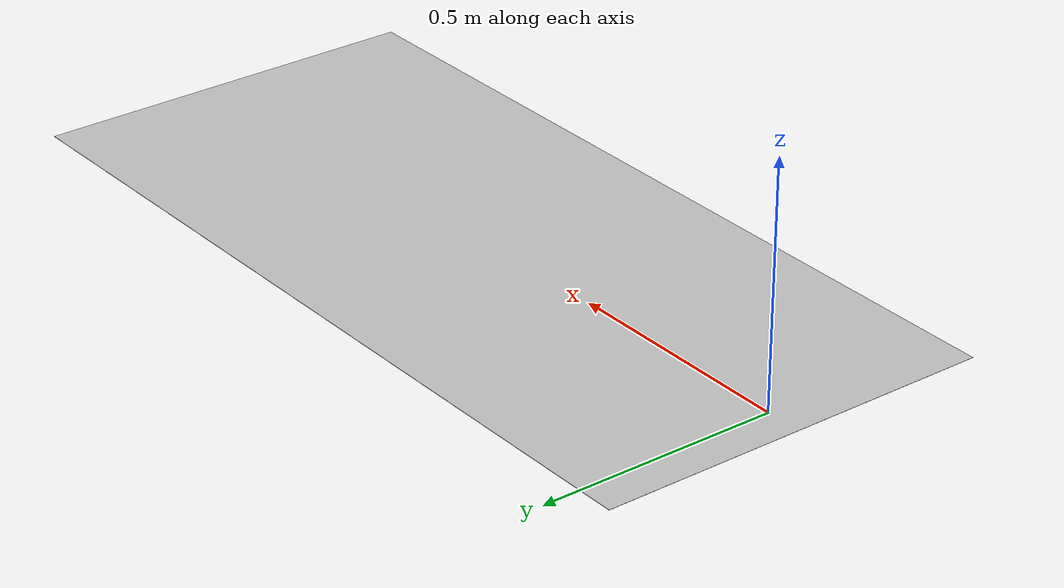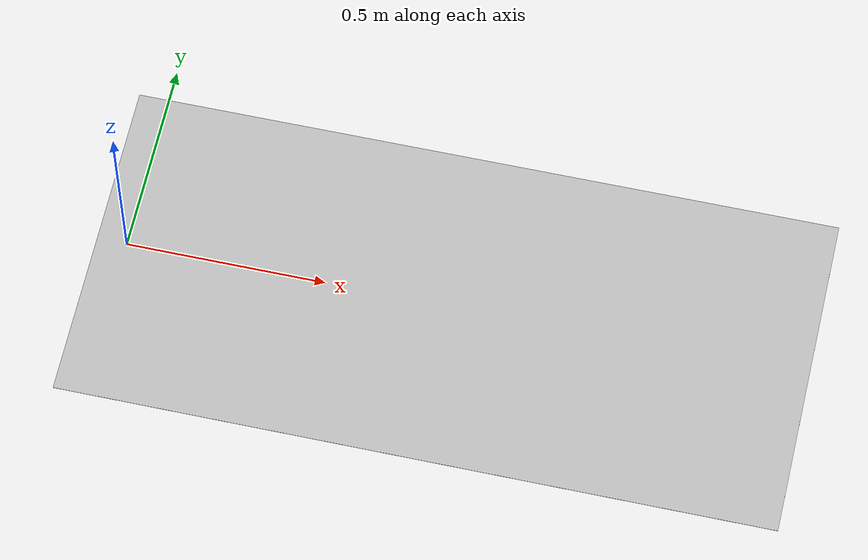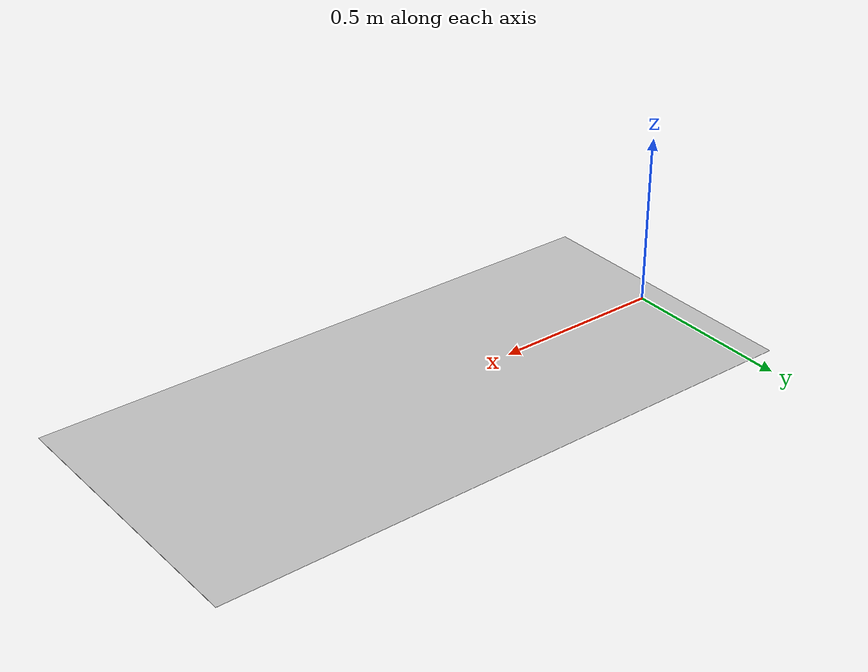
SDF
<?xml version="1.0"?>
<sdf version="1.4">
  <world name="calibration">
    <include>
      <uri>model://selfie_description/models/cali_mat</uri>
      <name>cali_mat</name>
      <pose>0.811 0 0 0 0 0</pose>
    </include>
    <include>
      <uri>model://sun</uri>
      <pose>0 0 10 0 0 0</pose>
      <name>sun</name>
    </include>

  </world>
</sdf>

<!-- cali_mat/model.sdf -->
<sdf version="1.4">
  <model name="cali_mat">
    <static>true</static>
    <link name="track">
      <collision name="collision">
        <geometry>
          <plane>
            <normal> 0 0 1</normal>
            <size>1.77581 0.841</size>
          </plane>
        </geometry>
        <surface>
          <friction>
            <ode>
              <mu>100</mu>
              <mu2>50</mu2>
            </ode>
          </friction>
         </surface>
      </collision>
      <visual name="visual">
        <cast_shadows>false</cast_shadows>
        <geometry>
          <plane>
            <normal>0 0 1</normal>
            <size>1.77581 0.841</size>
          </plane>
        </geometry>
        <material>
          <script>
            <uri>model://selfie_description/models/cali_mat/materials/scripts</uri>
            <uri>model://selfie_description/models/cali_mat/materials/textures</uri>
            <name>cali_mat/Image</name>
          </script>
        </material>
      </visual>
    </link>
  </model>
</sdf>
